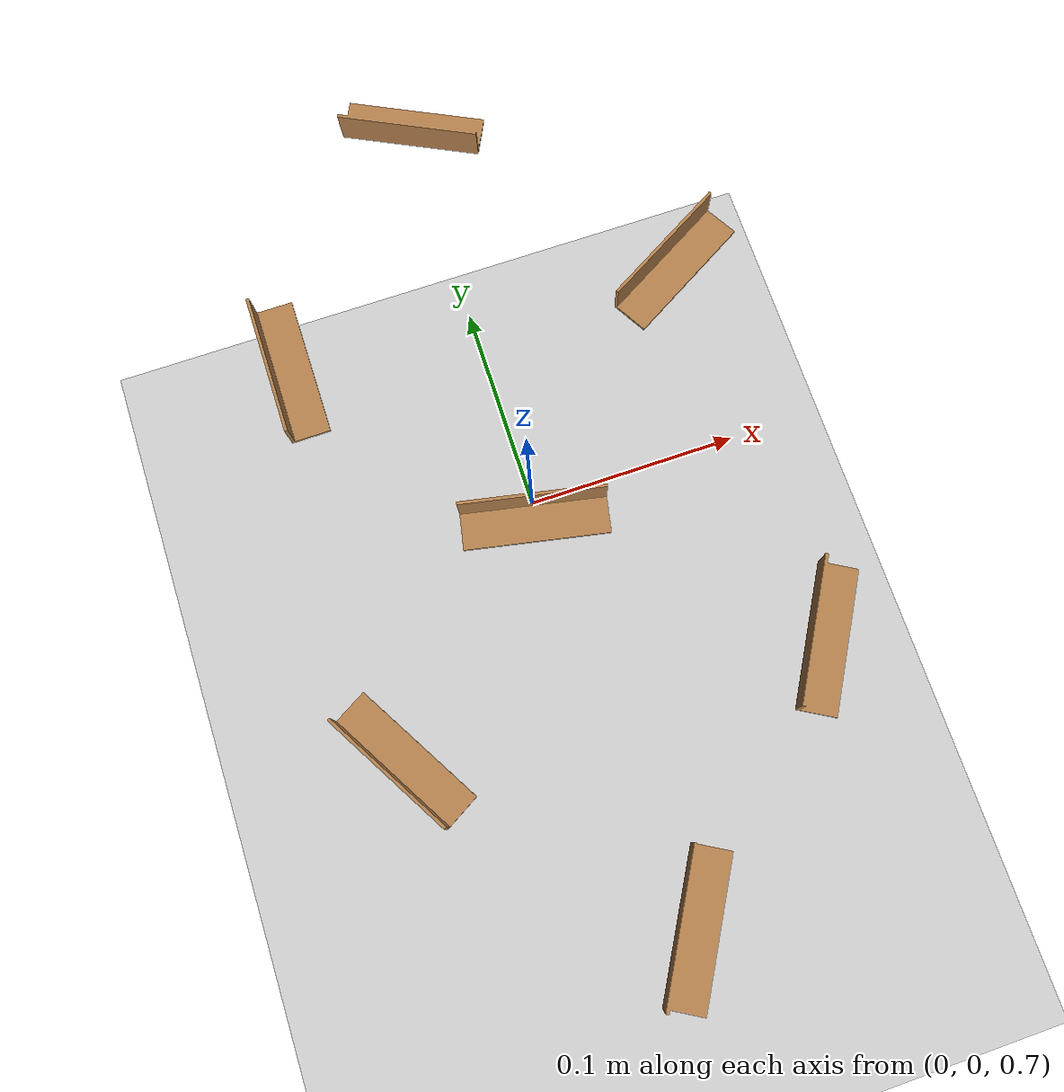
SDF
<?xml version="1.0"?>

<sdf version="1.5">
	<world name="default">
		<!-- A global light source -->
		<include>
			<uri>model://sun</uri>
		</include>

		<!-- A ground plane -->
		<include>
			<uri>model://ground_plane</uri>
		</include>

		<!-- Model -->
		<include>
			<name>alu_1</name>
			<uri>model://RightAngleAlu</uri>
			<pose>0 0 0.7 0 0 -0.2</pose>
		</include>
		<include>
			<name>alu_2</name>
			<uri>model://RightAngleAlu</uri>
			<pose>0.1 0.1 0.7 0 0 0.5236</pose>
		</include>
		<include>
			<name>alu_3</name>
			<uri>model://RightAngleAlu</uri>
			<pose>0.1 -0.1 0.7 0 0 1.0472</pose>
		</include>
		<include>
			<name>alu_4</name>
			<uri>model://RightAngleAlu</uri>
			<pose>-0.1 0.1 0.7 0 0 1.5707</pose>
		</include>
		<include>
			<name>alu_5</name>
			<uri>model://RightAngleAlu</uri>
			<pose>-0.1 -0.1 0.7 0 0 2.0943</pose>
		</include>
		<include>
			<name>alu_6</name>
			<uri>model://RightAngleAlu</uri>
			<pose>0 0.2 0.7 0 0 2.678</pose>
		</include>
		<include>
			<name>alu_7</name>
			<uri>model://RightAngleAlu</uri>
			<pose>0 -0.2 0.7 0 0 1.0472</pose>
		</include>
		<gui fullscreen='0'>
			<camera name='user_camera'>
				<pose>-1.845639 -2.212910 2.732601 0 0.583641 0.856190</pose>
				<view_controller>orbit</view_controller>
				<projection_type>perspective</projection_type>
			</camera>
		</gui>
	</world>
</sdf>

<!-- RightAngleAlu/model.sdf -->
<sdf version='1.7'>
  <model name='RightAngleAlu'>
    <link name='Alu'>
      <inertial>
        <mass>0.00010376</mass>
        <inertia>
          <ixx>7.2733E-07</ixx>
          <ixy>1.0603E-21</ixy>
          <ixz>-9.5556E-22</ixz>
          <iyy>4.6006E-06</iyy>
          <iyz>2.1645E-07</iyz>
          <izz>4.6006E-06</izz>
        </inertia>
        <pose>-6.8878E-18 -0.0053173 0.0053173 0 -0 0</pose>
      </inertial>

      <pose>0 0 0 0 -0 0</pose>
      <gravity>1</gravity>
      <self_collide>0</self_collide>
      <kinematic>0</kinematic>
      <enable_wind>0</enable_wind>

      <visual name='Alu_visual'>
        <pose>0 0 -0.0 1.5707963267949 0 0</pose>
        <geometry>
          <mesh>
            <uri>stl_files/rightangle.STL</uri>
            <scale>1 1 1</scale>
          </mesh>
        </geometry>
        <material>
          <lighting>1</lighting>
          <script>
            <uri>file://media/materials/scripts/gazebo.material</uri>
            <name>Gazebo/Wood</name>
          </script>
          <shader type='pixel'>
            <normal_map>__default__</normal_map>
          </shader>
          <ambient>0.3 0.3 0.3 1</ambient>
          <diffuse>0.5 0.25 0.0 1</diffuse>
          <specular>1 1 1 1</specular>
          <emissive>0.1 0.1 0.1 1</emissive>
        </material>
        <transparency>0</transparency>
        <cast_shadows>1</cast_shadows>
      </visual>

      <collision name='Alu_collision'>
        <laser_retro>0</laser_retro>
        <max_contacts>10</max_contacts>
        <pose>0 0 -0.0 1.5707963267949 0 0</pose>
        <geometry>
          <mesh>
            <uri>stl_files/rightangle.STL</uri>
            <scale>1 1 1</scale>
          </mesh>
        </geometry>
        <surface>
          <friction>
            <ode>
              <mu>1000000000000000000000000.0</mu>
              <mu2>1000000000000000000000000.0</mu2>
              <fdir1>1 0 0</fdir1>
              <slip1>0</slip1>
              <slip2>0</slip2>
              <minDepth>0.0001</minDepth>
            </ode>
            <torsional>
              <coefficient>1</coefficient>
              <patch_radius>0</patch_radius>
              <surface_radius>0</surface_radius>
              <use_patch_radius>1</use_patch_radius>
              <ode>
                <slip>0</slip>
              </ode>
            </torsional>
          </friction>
          <bounce>
            <restitution_coefficient>0</restitution_coefficient>
            <threshold>1e+06</threshold>
          </bounce>
          <contact>
            <collide_without_contact>0</collide_without_contact>
            <collide_without_contact_bitmask>1</collide_without_contact_bitmask>
            <collide_bitmask>1</collide_bitmask>
            <ode>
              <soft_cfm>0</soft_cfm>
              <soft_erp>0.2</soft_erp>
              <kp>1e+13</kp>
              <kd>1</kd>
              <max_vel>0.01</max_vel>
              <min_depth>0</min_depth>
            </ode>
            <bullet>
              <split_impulse>1</split_impulse>
              <split_impulse_penetration_threshold>-0.01</split_impulse_penetration_threshold>
              <soft_cfm>0</soft_cfm>
              <soft_erp>0.2</soft_erp>
              <kp>1e+13</kp>
              <kd>1</kd>
            </bullet>
          </contact>
        </surface>
      </collision>

    </link>

    <gazebo reference="Alu">
      <mu>1000000000000000000000000.0</mu>
      <mu2>1000000000000000000000000.0</mu2>
    </gazebo>

    <static>0</static>
    <allow_auto_disable>1</allow_auto_disable>
  </model>
</sdf>
